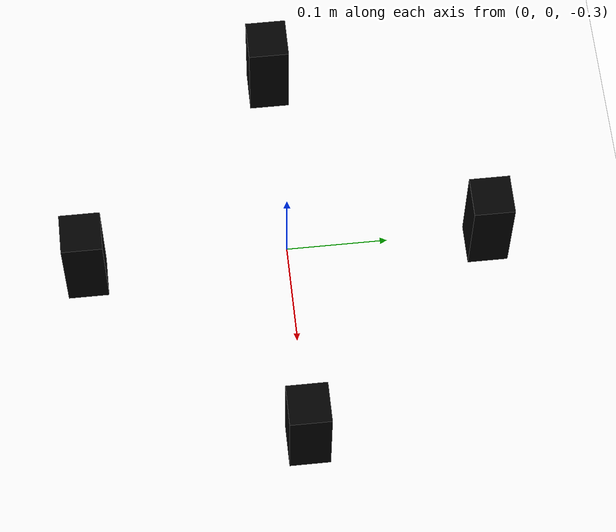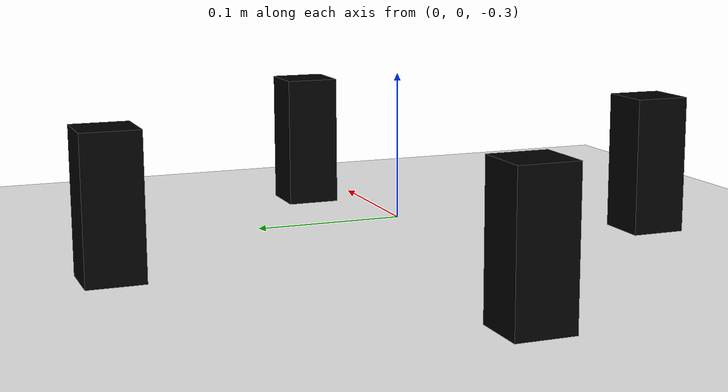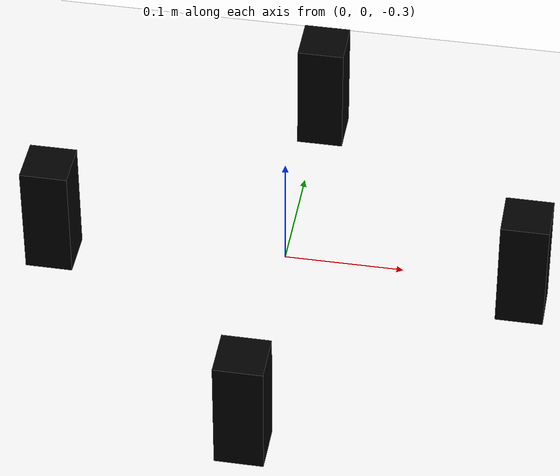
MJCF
<mujoco model="arm3d">
    <compiler angle="radian" coordinate="local" inertiafromgeom="true" meshdir="mesh" texturedir="textures" />
    <option gravity="0 0 0" integrator="Euler" iterations="20" timestep="0.01" />

    <default>
        <joint armature="0.04" damping="1" limited="true" />
        <geom conaffinity="0" condim="1" contype="0" density="10" friction=".8 .1 .1" margin="0.002" />
    </default>

    <asset>

        <texture name="texgeom" type="cube" builtin="flat" mark="cross" width="127" height="1278" rgb1="0.8 0.6 0.4" rgb2="0.8 0.6 0.4" markrgb="1 1 1" random="0.01" />
        <material name='MatPlane' texture="texgeom" shininess="1" texrepeat="60 60" specular="1"  reflectance="0.5" />
    </asset>
    <worldbody>
        <light diffuse=".5 .5 .5" dir="0 0 -1" pos="0 0 3" />

        <geom conaffinity="1" contype="1" condim="1" name="table" pos="0 0.5 -0.325" size="10 10 0.1" type="plane" rgba='255 255 255 1' />

        <body name="obj1" pos="-0.2 0. -0.325">
            <joint axis="1 0 0" damping="1.5" name="obj1_slidex" pos="0 0 0.05" range="-0.3 0.3" type="slide" />

            <geom conaffinity="0" contype="0" pos="0 0 0.05" density="0.0005" size="0.02 0.02 0.05" rgba="0 0. 0 1" type="box" />
        </body>

        <body name="obj2" pos="0.2 -0. -0.325">
            <joint axis="1 0 0" damping="1.5" name="obj2_slidex" pos="0 0 0.05" range="-0.3 0.3" type="slide" />

            <geom conaffinity="0" contype="0" pos="0 0 0.05" density="0.0005" size="0.02 0.02 0.05" rgba="0. 0. 0 1" type="box" />
        </body>

        <body name="obj3" pos="0 -0.2 -0.325">

            <joint axis="0 1 0" damping="1.5" name="obj3_slidey" pos="0 0 0.05" range="-0.3 0.3" type="slide" />
            <geom conaffinity="0" contype="0" pos="0 0 0.05" density="0.0005" size="0.02 0.02 0.05" rgba="0 0 0. 1" type="box" />
        </body>

        <body name="obj4" pos="0 0.2 -0.325">

            <joint axis="0 1 0" damping="1.5" name="obj4_slidey" pos="0 0 0.05" range="-0.3 0.3" type="slide" />
            <geom conaffinity="0" contype="0" pos="0 0 0.05" density="0.0005" size="0.02 0.02 0.05" rgba="0 0. 0 1" type="box" />
        </body>

    </worldbody>

    <actuator>
        <motor ctrllimited="true" ctrlrange="-2.0 2.0" joint="obj1_slidex" />
        <motor ctrllimited="true" ctrlrange="-2.0 2.0" joint="obj2_slidex" />
        <motor ctrllimited="true" ctrlrange="-2.0 2.0" joint="obj3_slidey" />
        <motor ctrllimited="true" ctrlrange="-2.0 2.0" joint="obj4_slidey" />
    </actuator>

</mujoco>
